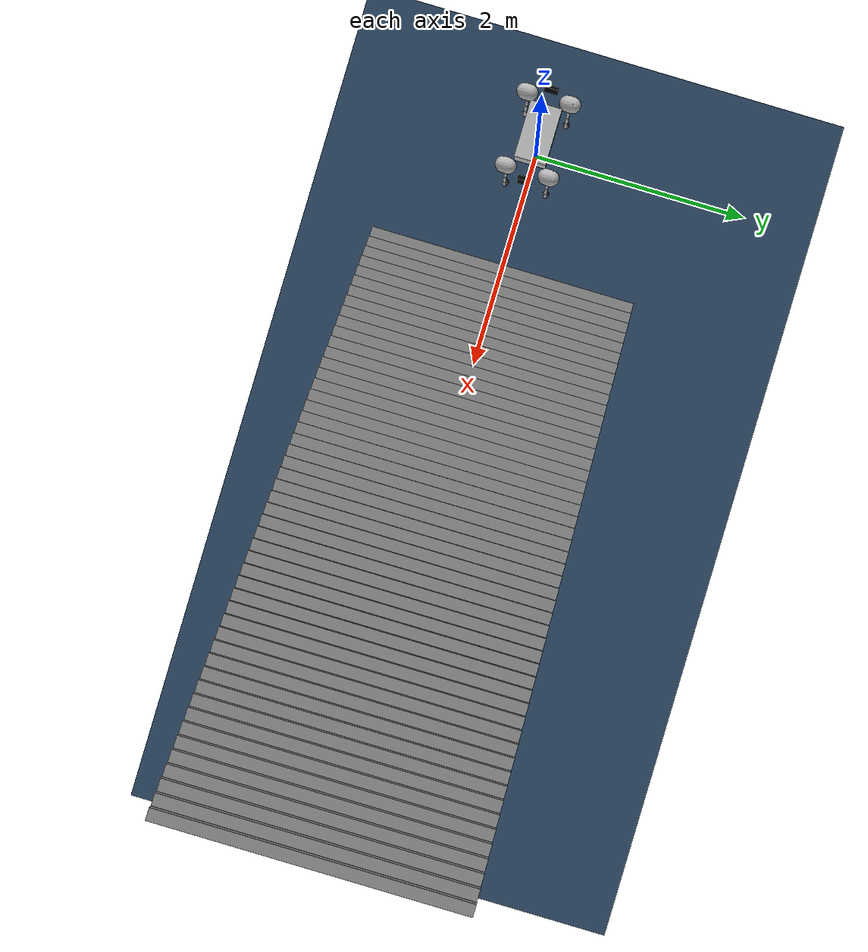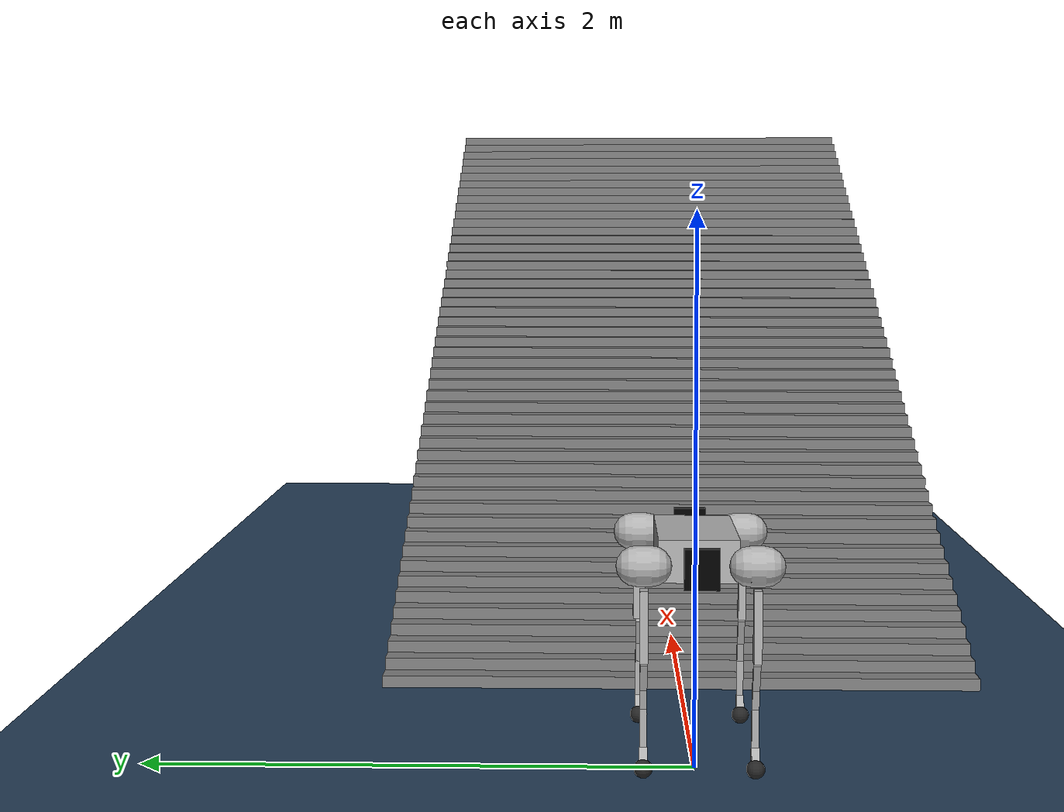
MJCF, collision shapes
<mujoco model="b2 scene">
  <include file="b2.xml" />

  <statistic center="0 0 0.1" extent="0.8" />

  <visual>
    <headlight diffuse="0.6 0.6 0.6" ambient="0.3 0.3 0.3" specular="0 0 0" />
    <rgba haze="0.15 0.25 0.35 1" />
    <global azimuth="-130" elevation="-20" />
  </visual>

  <asset>
    <texture type="skybox" builtin="gradient" rgb1="0.3 0.5 0.7" rgb2="0 0 0" width="512" height="3072" />
    <texture type="2d" name="groundplane" builtin="checker" mark="edge" rgb1="0.2 0.3 0.4" rgb2="0.1 0.2 0.3" markrgb="0.8 0.8 0.8" width="300" height="300" />
    <material name="groundplane" texture="groundplane" texuniform="true" texrepeat="5 5" reflectance="0.2" />
  </asset>

  <worldbody>
    <light pos="0 0 1.5" dir="0 0 -1" directional="true" />
    <geom name="floor" size="0 0 0.05" type="plane" material="groundplane" />
  <geom pos="1.1 0.0 0.025" type="box" size="0.05 1.25 0.025" quat="1.0 0.0 0.0 0.0" /><geom pos="1.2 0.0 0.07500000000000001" type="box" size="0.05 1.25 0.025" quat="1.0 0.0 0.0 0.0" /><geom pos="1.3 0.0 0.125" type="box" size="0.05 1.25 0.025" quat="1.0 0.0 0.0 0.0" /><geom pos="1.4 0.0 0.175" type="box" size="0.05 1.25 0.025" quat="1.0 0.0 0.0 0.0" /><geom pos="1.5 0.0 0.22499999999999998" type="box" size="0.05 1.25 0.025" quat="1.0 0.0 0.0 0.0" /><geom pos="1.6 0.0 0.27499999999999997" type="box" size="0.05 1.25 0.025" quat="1.0 0.0 0.0 0.0" /><geom pos="1.7 0.0 0.32499999999999996" type="box" size="0.05 1.25 0.025" quat="1.0 0.0 0.0 0.0" /><geom pos="1.7999999999999998 0.0 0.37499999999999994" type="box" size="0.05 1.25 0.025" quat="1.0 0.0 0.0 0.0" /><geom pos="1.9 0.0 0.42499999999999993" type="box" size="0.05 1.25 0.025" quat="1.0 0.0 0.0 0.0" /><geom pos="2.0 0.0 0.4749999999999999" type="box" size="0.05 1.25 0.025" quat="1.0 0.0 0.0 0.0" /><geom pos="2.0999999999999996 0.0 0.5249999999999999" type="box" size="0.05 1.25 0.025" quat="1.0 0.0 0.0 0.0" /><geom pos="2.2 0.0 0.575" type="box" size="0.05 1.25 0.025" quat="1.0 0.0 0.0 0.0" /><geom pos="2.3 0.0 0.625" type="box" size="0.05 1.25 0.025" quat="1.0 0.0 0.0 0.0" /><geom pos="2.4000000000000004 0.0 0.675" type="box" size="0.05 1.25 0.025" quat="1.0 0.0 0.0 0.0" /><geom pos="2.5 0.0 0.7250000000000001" type="box" size="0.05 1.25 0.025" quat="1.0 0.0 0.0 0.0" /><geom pos="2.6000000000000005 0.0 0.7750000000000001" type="box" size="0.05 1.25 0.025" quat="1.0 0.0 0.0 0.0" /><geom pos="2.7 0.0 0.8250000000000002" type="box" size="0.05 1.25 0.025" quat="1.0 0.0 0.0 0.0" /><geom pos="2.8000000000000007 0.0 0.8750000000000002" type="box" size="0.05 1.25 0.025" quat="1.0 0.0 0.0 0.0" /><geom pos="2.9000000000000004 0.0 0.9250000000000003" type="box" size="0.05 1.25 0.025" quat="1.0 0.0 0.0 0.0" /><geom pos="3.0000000000000004 0.0 0.9750000000000003" type="box" size="0.05 1.25 0.025" quat="1.0 0.0 0.0 0.0" /><geom pos="3.1000000000000005 0.0 1.0250000000000004" type="box" size="0.05 1.25 0.025" quat="1.0 0.0 0.0 0.0" /><geom pos="3.2000000000000006 0.0 1.0750000000000004" type="box" size="0.05 1.25 0.025" quat="1.0 0.0 0.0 0.0" /><geom pos="3.3000000000000007 0.0 1.1250000000000004" type="box" size="0.05 1.25 0.025" quat="1.0 0.0 0.0 0.0" /><geom pos="3.400000000000001 0.0 1.1750000000000005" type="box" size="0.05 1.25 0.025" quat="1.0 0.0 0.0 0.0" /><geom pos="3.500000000000001 0.0 1.2250000000000005" type="box" size="0.05 1.25 0.025" quat="1.0 0.0 0.0 0.0" /><geom pos="3.600000000000001 0.0 1.2750000000000006" type="box" size="0.05 1.25 0.025" quat="1.0 0.0 0.0 0.0" /><geom pos="3.700000000000001 0.0 1.3250000000000006" type="box" size="0.05 1.25 0.025" quat="1.0 0.0 0.0 0.0" /><geom pos="3.800000000000001 0.0 1.3750000000000007" type="box" size="0.05 1.25 0.025" quat="1.0 0.0 0.0 0.0" /><geom pos="3.9000000000000012 0.0 1.4250000000000007" type="box" size="0.05 1.25 0.025" quat="1.0 0.0 0.0 0.0" /><geom pos="4.000000000000002 0.0 1.4750000000000008" type="box" size="0.05 1.25 0.025" quat="1.0 0.0 0.0 0.0" /><geom pos="4.100000000000001 0.0 1.5250000000000008" type="box" size="0.05 1.25 0.025" quat="1.0 0.0 0.0 0.0" /><geom pos="4.200000000000001 0.0 1.5750000000000008" type="box" size="0.05 1.25 0.025" quat="1.0 0.0 0.0 0.0" /><geom pos="4.300000000000002 0.0 1.6250000000000009" type="box" size="0.05 1.25 0.025" quat="1.0 0.0 0.0 0.0" /><geom pos="4.400000000000002 0.0 1.675000000000001" type="box" size="0.05 1.25 0.025" quat="1.0 0.0 0.0 0.0" /><geom pos="4.500000000000002 0.0 1.725000000000001" type="box" size="0.05 1.25 0.025" quat="1.0 0.0 0.0 0.0" /><geom pos="4.600000000000001 0.0 1.775000000000001" type="box" size="0.05 1.25 0.025" quat="1.0 0.0 0.0 0.0" /><geom pos="4.700000000000002 0.0 1.825000000000001" type="box" size="0.05 1.25 0.025" quat="1.0 0.0 0.0 0.0" /><geom pos="4.8000000000000025 0.0 1.875000000000001" type="box" size="0.05 1.25 0.025" quat="1.0 0.0 0.0 0.0" /><geom pos="4.900000000000002 0.0 1.9250000000000012" type="box" size="0.05 1.25 0.025" quat="1.0 0.0 0.0 0.0" /><geom pos="5.000000000000002 0.0 1.9750000000000012" type="box" size="0.05 1.25 0.025" quat="1.0 0.0 0.0 0.0" /><geom pos="5.100000000000001 0.0 2.0250000000000012" type="box" size="0.05 1.25 0.025" quat="1.0 0.0 0.0 0.0" /><geom pos="5.200000000000001 0.0 2.075000000000001" type="box" size="0.05 1.25 0.025" quat="1.0 0.0 0.0 0.0" /><geom pos="5.300000000000001 0.0 2.125000000000001" type="box" size="0.05 1.25 0.025" quat="1.0 0.0 0.0 0.0" /><geom pos="5.4 0.0 2.1750000000000007" type="box" size="0.05 1.25 0.025" quat="1.0 0.0 0.0 0.0" /><geom pos="5.5 0.0 2.2250000000000005" type="box" size="0.05 1.25 0.025" quat="1.0 0.0 0.0 0.0" /><geom pos="5.6 0.0 2.2750000000000004" type="box" size="0.05 1.25 0.025" quat="1.0 0.0 0.0 0.0" /><geom pos="5.699999999999999 0.0 2.325" type="box" size="0.05 1.25 0.025" quat="1.0 0.0 0.0 0.0" /><geom pos="5.799999999999999 0.0 2.375" type="box" size="0.05 1.25 0.025" quat="1.0 0.0 0.0 0.0" /><geom pos="5.899999999999999 0.0 2.425" type="box" size="0.05 1.25 0.025" quat="1.0 0.0 0.0 0.0" /><geom pos="5.999999999999998 0.0 2.4749999999999996" type="box" size="0.05 1.25 0.025" quat="1.0 0.0 0.0 0.0" /></worldbody>
</mujoco>

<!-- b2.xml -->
<mujoco model="b2_description">
    <compiler angle="radian" autolimits="true"/>

    <default>
        <default class="b2">
            <geom type="mesh"/>
            <joint damping="1" armature="0.1"/>
            <default class="visual">
                <geom contype="0" conaffinity="0" group="2"/>
            </default>
            <default class="collision">
                <!-- Capsules instead of cylinders: MJX has no cylinder-box contacts. -->
                <geom group="3" mass="0" density="0"/>
            </default>
            <site size="0.001" rgba="0.5 0.5 0.5 0.3" group="4"/>
        </default>
    </default>

    <asset>
        <mesh name="base_link" file="assets/base_link.obj"/>

        <!-- modify these to add lidar, uncommenting the one before -->
        <!--mesh name="base_link_lidar" file="assets/base_link.obj"/-->
        <!--mesh name="unitree_ladar" file="assets/unitree_ladar.obj"/-->

        <mesh name="logo_left" file="assets/logo_left.obj"/>
        <mesh name="logo_right" file="assets/logo_right.obj"/>
        <mesh name="f_dc_link" file="assets/f_dc_link.obj"/>
        <mesh name="r_dc_link" file="assets/r_dc_link.obj"/>
        <mesh name="fake_imu_link" file="assets/fake_imu_link.STL"/>
        <mesh name="fake_head_Link" file="assets/fake_head_Link.STL"/>
        <mesh name="fake_tail_link" file="assets/fake_tail_link.STL"/>
        <mesh name="FL_hip" file="assets/FL_hip.obj"/>
        <mesh name="FL_thigh" file="assets/FL_thigh.obj"/>
        <mesh name="FL_thigh_protect" file="assets/FL_thigh_protect.obj"/>
        <mesh name="FL_calf" file="assets/FL_calf.obj"/>
        <mesh name="FL_foot" file="assets/FL_foot.obj"/>
        <mesh name="FR_hip" file="assets/FR_hip.obj"/>
        <mesh name="FR_thigh" file="assets/FR_thigh.obj"/>
        <mesh name="FR_thigh_protect" file="assets/FR_thigh_protect.obj"/>
        <mesh name="FR_calf" file="assets/FR_calf.obj"/>
        <mesh name="FR_foot" file="assets/FR_foot.obj"/>
        <mesh name="RL_hip" file="assets/RL_hip.obj"/>
        <mesh name="RL_thigh" file="assets/RL_thigh.obj"/>
        <mesh name="RL_thigh_protect" file="assets/RL_thigh_protect.obj"/>
        <mesh name="RL_calf" file="assets/RL_calf.obj"/>
        <mesh name="RL_foot" file="assets/RL_foot.obj"/>
        <mesh name="RR_hip" file="assets/RR_hip.obj"/>
        <mesh name="RR_thigh" file="assets/RR_thigh.obj"/>
        <mesh name="RR_thigh_protect" file="assets/RR_thigh_protect.obj"/>
        <mesh name="RR_calf" file="assets/RR_calf.obj"/>
        <mesh name="RR_foot" file="assets/RR_foot.obj"/>
        <mesh name="f_oc_link" file="assets/f_oc_link.obj"/>
        <mesh name="r_oc_link" file="assets/r_oc_link.obj"/>
    </asset>
    <worldbody>

        <body name="base" pos="0 0 0.8" childclass="b2">
            <inertial pos="0.0212868 0.0045819 0.0106169" quat="0.00178111 0.73 -0.000262894 0.737438"
                      mass="40.8426" diaginertia="1.73786 1.66448 0.343734"/>

            <!-- modify this to add lidar -->
            <!--inertial pos="0.0212868 0.0045819 0.0106169" quat="0.00178111 0.675412 -0.000262894 0.737438"
                      mass="40.8426" diaginertia="1.73786 1.66448 0.343734"/-->

            <joint name="floating_base_joint" type="free"/>
            <geom type="mesh" contype="0" conaffinity="0" group="1" density="0" rgba="0.7 0.7 0.7 1" mesh="base_link"/>
            <geom size="0.25 0.14 0.075" type="box" rgba="0.7 0.7 0.7 1" class="collision"/>
            <geom type="mesh" contype="0" conaffinity="0" group="1" density="0" rgba="1 1 1 1" mesh="logo_left"/>
            <geom type="mesh" contype="0" conaffinity="0" group="1" density="0" rgba="1 1 1 1" mesh="logo_right"/>

            <!-- modify these to add lidar -->
            <!--geom pos="0.34218 0 0.17851" type="mesh" contype="0" conaffinity="0" group="1" density="0"
                  rgba="0.15 0.15 0.15 1" mesh="unitree_ladar"/-->
            <!--geom size="0.076 0.08" pos="0.34218 0 0.15851" type="capsule" rgba="0.15 0.15 0.15 1" class="collision"/-->

            <geom pos="0.841724 -4.57659e-06 0.130379" quat="0.00244632 3.13845e-06 0.999997 1.29099e-06" type="mesh"
                  contype="0" conaffinity="0" group="1" density="0" rgba="0 0 0 1" mesh="f_dc_link"/>
            <geom pos="-0.378319 0.000200109 -0.379902" quat="-1.30076e-06 -0.708662 5.35065e-07 0.705548" type="mesh"
                  contype="0" conaffinity="0" group="1" density="0" rgba="0 0 0 1" mesh="r_dc_link"/>
            <geom pos="0 -0.02341 0.04927" type="mesh" contype="0" conaffinity="0" group="1" density="0" rgba="0 0 0 1"
                  mesh="fake_imu_link"/>
            <geom type="mesh" contype="0" conaffinity="0" group="1" density="0" rgba="0 0 0 1" mesh="fake_head_Link"/>
            <geom size="0.02 0.06 0.07" pos="0.41 0 0.005" type="box" rgba="0 0 0 1" class="collision"/>
            <geom type="mesh" contype="0" conaffinity="0" group="1" density="0" rgba="0 0 0 1" mesh="fake_tail_link"/>
            <geom size="0.0125 0.06 0.07" pos="-0.405 0 0.005" type="box" rgba="0 0 0 1" class="collision"/>
            <geom pos="0.84158 -0.0134347 -0.0134347" quat="-3.89602e-06 1.29867e-06 0.707107 -0.707107" type="mesh"
                  contype="0" conaffinity="0" group="1" density="0" rgba="0 0 0 1" mesh="f_oc_link"/>
            <geom pos="-0.00451008 0.0252504 -0.0262476" quat="0.707107 -0.707107 -1.29867e-06 -1.29867e-06" type="mesh"
                  contype="0" conaffinity="0" group="1" density="0" rgba="0 0 0 1" mesh="r_oc_link"/>
            <site name="imu" pos="0 -0.02341 0.04927"/>
            <body name="FL_hip" pos="0.3285 0.072 0">
                <inertial pos="-0.00829923 -0.00998502 0.000235465" quat="0.525168 0.518964 0.477213 0.476595"
                          mass="2.5294" diaginertia="0.00485541 0.00370618 0.00277182"/>
                <joint name="FL_hip_joint" pos="0 0 0" axis="1 0 0" range="-0.87 0.87"/>
                <geom type="mesh" contype="0" conaffinity="0" group="1" density="0" rgba="0.7 0.7 0.7 1" mesh="FL_hip"/>
                <geom size="0.07 0.025" pos="0 0.12 0" quat="0.707107 0.707107 0 0" type="capsule" rgba="0.7 0.7 0.7 1"
                      class="collision"/>
                <body name="FL_thigh" pos="0 0.11973 0">
                    <inertial pos="-0.00418663 -0.0366068 -0.0432737" quat="0.884916 0.0880602 -0.00896728 0.457262"
                              mass="7.4554" diaginertia="0.085057 0.0842843 0.0112538"/>
                    <joint name="FL_thigh_joint" pos="0 0 0" axis="0 1 0" range="-0.94 4.69"/>
                    <geom type="mesh" contype="0" conaffinity="0" group="1" density="0" rgba="0.7 0.7 0.7 1"
                          mesh="FL_thigh"/>
                    <geom size="0.16 0.02225 0.027" pos="-0.025 0 -0.16" quat="0.707388 0 0.706825 0" type="box"
                          rgba="0.7 0.7 0.7 1" class="collision"/>
                    <geom type="mesh" contype="0" conaffinity="0" group="1" density="0" rgba="0.65 0.68 0.65 1"
                          mesh="FL_thigh_protect"/>
                    <body name="FL_calf" pos="0 -8.6984e-05 -0.35">
                        <inertial pos="0.0096848 1.25758e-05 -0.158987" quat="0.70753 -0.00625821 -0.00634277 0.706627"
                                  mass="0.679123" diaginertia="0.0162494 0.0161173 0.000398115"/>
                        <joint name="FL_calf_joint" pos="0 0 0" axis="0 1 0" range="-2.82 -0.43"/>
                        <geom type="mesh" contype="0" conaffinity="0" group="1" density="0" rgba="0.7 0.7 0.7 1"
                              mesh="FL_calf"/>
                        <geom size="0.05 0.01225 0.009" pos="-0.002 0 -0.03" quat="0.825336 0 0.564642 0" type="box"
                              rgba="0.7 0.7 0.7 1" class="collision"/>
                        <geom size="0.05 0.01225 0.009" pos="0.022 0 -0.1" quat="0.780707 0 0.624897 0" type="box"
                              rgba="0.7 0.7 0.7 1" class="collision"/>
                        <geom size="0.075 0.01225 0.0075" pos="0.036 0 -0.225" quat="0.721382 0 0.692537 0" type="box"
                              rgba="0.7 0.7 0.7 1" class="collision"/>
                        <geom size="0.025 0.014 0.0175" pos="0.023 0 -0.31" quat="0.540302 0 0.841471 0" type="box"
                              rgba="0.7 0.7 0.7 1" class="collision"/>
                        <geom pos="0 8.6986e-05 0" type="mesh" contype="0" conaffinity="0" group="1" density="0"
                              rgba="0.15 0.15 0.15 1" mesh="FL_foot" friction="0.4 0.005 0.0001"/>
                        <geom name="FL" size="0.032" pos="0 8.6986e-05 -0.35" quat="0.707388 0.706825 0 0" type="sphere"
                              rgba="0.15 0.15 0.15 1" class="collision" friction="0.4 0.005 0.0001"/>
                    </body>
                </body>
            </body>
            <body name="FR_hip" pos="0.3285 -0.072 0">
                <inertial pos="-0.00829923 0.00998502 0.000235465" quat="0.476595 0.477213 0.518964 0.525168"
                          mass="2.5294" diaginertia="0.00485541 0.00370618 0.00277182"/>
                <joint name="FR_hip_joint" pos="0 0 0" axis="1 0 0" range="-0.87 0.87"/>
                <geom type="mesh" contype="0" conaffinity="0" group="1" density="0" rgba="0.7 0.7 0.7 1" mesh="FR_hip"/>
                <geom size="0.07 0.025" pos="0 -0.12 0" quat="0.707107 0.707107 0 0" type="capsule"
                      rgba="0.7 0.7 0.7 1" class="collision"/>
                <body name="FR_thigh" pos="0 -0.11973 0">
                    <inertial pos="-0.00418663 0.0366068 -0.0432737" quat="0.457262 -0.00896728 0.0880602 0.884916"
                              mass="7.4554" diaginertia="0.085057 0.0842843 0.0112538"/>
                    <joint name="FR_thigh_joint" pos="0 0 0" axis="0 1 0" range="-0.94 4.69"/>
                    <geom type="mesh" contype="0" conaffinity="0" group="1" density="0" rgba="0.7 0.7 0.7 1"
                          mesh="FR_thigh"/>
                    <geom size="0.125 0.014 0.02" pos="-0.03 0 -0.2" quat="0.707388 0 0.706825 0" type="box"
                          rgba="0.7 0.7 0.7 1" class="collision"/>
                    <geom type="mesh" contype="0" conaffinity="0" group="1" density="0" rgba="0.65 0.68 0.65 1"
                          mesh="FR_thigh_protect"/>
                    <body name="FR_calf" pos="0 8.6986e-05 -0.35">
                        <inertial pos="0.0096848 0 -0.158987" quat="0.707079 -0.00630052 -0.00630052 0.707079"
                                  mass="0.679123" diaginertia="0.0162494 0.0161173 0.000398115"/>
                        <joint name="FR_calf_joint" pos="0 0 0" axis="0 1 0" range="-2.82 -0.43"/>
                        <geom type="mesh" contype="0" conaffinity="0" group="1" density="0" rgba="0.7 0.7 0.7 1"
                              mesh="FR_calf"/>
                        <geom size="0.05 0.01225 0.009" pos="-0.002 0 -0.03" quat="0.825336 0 0.564642 0" type="box"
                              rgba="0.7 0.7 0.7 1" class="collision"/>
                        <geom size="0.05 0.01225 0.009" pos="0.022 0 -0.1" quat="0.780707 0 0.624897 0" type="box"
                              rgba="0.7 0.7 0.7 1" class="collision"/>
                        <geom size="0.075 0.01225 0.0075" pos="0.036 0 -0.225" quat="0.721382 0 0.692537 0" type="box"
                              rgba="0.7 0.7 0.7 1" class="collision"/>
                        <geom size="0.025 0.014 0.0175" pos="0.023 0 -0.31" quat="0.540302 0 0.841471 0" type="box"
                              rgba="0.7 0.7 0.7 1" class="collision"/>
                        <geom type="mesh" contype="0" conaffinity="0" group="1" density="0" rgba="0.15 0.15 0.15 1"
                              mesh="FR_foot" friction="0.4 0.005 0.0001"/>
                        <geom name="FR" size="0.032" pos="0 8.6986e-05 -0.35" quat="0.707388 0.706825 0 0" type="sphere"
                              rgba="0.15 0.15 0.15 1" class="collision" friction="0.4 0.005 0.0001"/>
                    </body>
                </body>
            </body>
            <body name="RL_hip" pos="-0.3285 0.072 0">
                <inertial pos="0.00829923 -0.00998502 0.000235465" quat="0.477213 0.476595 0.525168 0.518964"
                          mass="2.5294" diaginertia="0.00485541 0.00370618 0.00277182"/>
                <joint name="RL_hip_joint" pos="0 0 0" axis="1 0 0" range="-0.87 0.87"/>
                <geom type="mesh" contype="0" conaffinity="0" group="1" density="0" rgba="0.7 0.7 0.7 1" mesh="RL_hip"/>
                <geom size="0.07 0.025" pos="0 0.12 0" quat="0.707107 0.707107 0 0" type="capsule" rgba="0.7 0.7 0.7 1"
                      class="collision"/>
                <body name="RL_thigh" pos="0 0.11973 0">
                    <inertial pos="-0.00418663 -0.0366068 -0.0432737" quat="0.884916 0.0880602 -0.00896728 0.457262"
                              mass="7.4554" diaginertia="0.085057 0.0842843 0.0112538"/>
                    <joint name="RL_thigh_joint" pos="0 0 0" axis="0 1 0" range="-0.94 4.69"/>
                    <geom type="mesh" contype="0" conaffinity="0" group="1" density="0" rgba="0.7 0.7 0.7 1"
                          mesh="RL_thigh"/>
                    <geom size="0.125 0.014 0.02" pos="-0.03 0 -0.2" quat="0.707388 0 0.706825 0" type="box"
                          rgba="0.7 0.7 0.7 1" class="collision"/>
                    <geom type="mesh" contype="0" conaffinity="0" group="1" density="0" rgba="0.65 0.68 0.65 1"
                          mesh="RL_thigh_protect"/>
                    <body name="RL_calf" pos="0 -8.6984e-05 -0.35">
                        <inertial pos="0.0096848 1.25758e-05 -0.158987" quat="0.70753 -0.00625821 -0.00634277 0.706627"
                                  mass="0.679123" diaginertia="0.0162494 0.0161173 0.000398115"/>
                        <joint name="RL_calf_joint" pos="0 0 0" axis="0 1 0" range="-2.82 -0.43"/>
                        <geom type="mesh" contype="0" conaffinity="0" group="1" density="0" rgba="0.7 0.7 0.7 1"
                              mesh="RL_calf"/>
                        <geom size="0.05 0.01225 0.009" pos="-0.002 0 -0.03" quat="0.825336 0 0.564642 0" type="box"
                              rgba="0.7 0.7 0.7 1" class="collision"/>
                        <geom size="0.05 0.01225 0.009" pos="0.022 0 -0.1" quat="0.780707 0 0.624897 0" type="box"
                              rgba="0.7 0.7 0.7 1" class="collision"/>
                        <geom size="0.075 0.01225 0.0075" pos="0.036 0 -0.225" quat="0.721382 0 0.692537 0" type="box"
                              rgba="0.7 0.7 0.7 1" class="collision"/>
                        <geom size="0.025 0.014 0.0175" pos="0.023 0 -0.31" quat="0.540302 0 0.841471 0" type="box"
                              rgba="0.7 0.7 0.7 1" class="collision"/>
                        <geom pos="0 8.6986e-05 0" type="mesh" contype="0" conaffinity="0" group="1" density="0"
                              rgba="0.15 0.15 0.15 1" mesh="RL_foot" friction="0.4 0.005 0.0001"/>
                        <geom name="RL" size="0.032" pos="0 8.6986e-05 -0.35" quat="0.707388 0.706825 0 0" type="sphere"
                              rgba="0.15 0.15 0.15 1" class="collision" friction="0.4 0.005 0.0001"/>
                    </body>
                </body>
            </body>
            <body name="RR_hip" pos="-0.3285 -0.072 0">
                <inertial pos="0.00829923 -0.00825992 0.000235465" quat="0.524846 0.53164 0.469132 0.470967"
                          mass="2.5294" diaginertia="0.0048658 0.00378576 0.00284106"/>
                <joint name="RR_hip_joint" pos="0 0 0" axis="1 0 0" range="-0.87 0.87"/>
                <geom type="mesh" contype="0" conaffinity="0" group="1" density="0" rgba="0.7 0.7 0.7 1" mesh="RR_hip"/>
                <geom size="0.07 0.025" pos="0 -0.12 0" quat="0.707107 0.707107 0 0" type="capsule"
                      rgba="0.7 0.7 0.7 1" class="collision"/>
                <body name="RR_thigh" pos="0 -0.11973 0">
                    <inertial pos="-0.00418663 0.0366068 -0.0432737" quat="0.457262 -0.00896728 0.0880602 0.884916"
                              mass="7.4554" diaginertia="0.085057 0.0842843 0.0112538"/>
                    <joint name="RR_thigh_joint" pos="0 0 0" axis="0 1 0" range="-0.94 4.69"/>
                    <geom type="mesh" contype="0" conaffinity="0" group="1" density="0" rgba="0.7 0.7 0.7 1"
                          mesh="RR_thigh"/>
                    <geom size="0.125 0.014 0.02" pos="-0.03 0 -0.2" quat="0.707388 0 0.706825 0" type="box"
                          rgba="0.7 0.7 0.7 1" class="collision"/>
                    <geom type="mesh" contype="0" conaffinity="0" group="1" density="0" rgba="0.65 0.68 0.65 1"
                          mesh="RR_thigh_protect"/>
                    <body name="RR_calf" pos="0 8.6986e-05 -0.35">
                        <inertial pos="0.0096848 -1.25756e-05 -0.158987" quat="0.706627 -0.00634277 -0.00625821 0.70753"
                                  mass="0.679123" diaginertia="0.0162494 0.0161173 0.000398115"/>
                        <joint name="RR_calf_joint" pos="0 0 0" axis="0 1 0" range="-2.82 -0.43"/>
                        <geom type="mesh" contype="0" conaffinity="0" group="1" density="0" rgba="0.7 0.7 0.7 1"
                              mesh="RR_calf"/>
                        <geom size="0.05 0.01225 0.009" pos="-0.002 0 -0.03" quat="0.825336 0 0.564642 0" type="box"
                              rgba="0.7 0.7 0.7 1" class="collision"/>
                        <geom size="0.05 0.01225 0.009" pos="0.022 0 -0.1" quat="0.780707 0 0.624897 0" type="box"
                              rgba="0.7 0.7 0.7 1" class="collision"/>
                        <geom size="0.075 0.01225 0.0075" pos="0.036 0 -0.225" quat="0.721382 0 0.692537 0" type="box"
                              rgba="0.7 0.7 0.7 1" class="collision"/>
                        <geom size="0.025 0.014 0.0175" pos="0.023 0 -0.31" quat="0.540302 0 0.841471 0" type="box"
                              rgba="0.7 0.7 0.7 1" class="collision"/>
                        <geom pos="0 -8.6984e-05 0" type="mesh" contype="0" conaffinity="0" group="1" density="0"
                              rgba="0.15 0.15 0.15 1" mesh="RR_foot" friction="0.4 0.005 0.0001"/>
                        <geom name="RR" size="0.032" pos="0 8.6986e-05 -0.35" quat="0.707388 0.706825 0 0" type="sphere"
                              rgba="0.15 0.15 0.15 1" class="collision" friction="0.4 0.005 0.0001"/>
                    </body>
                </body>
            </body>
        </body>
    </worldbody>

    <actuator>
        <motor class="b2" ctrlrange="-200 200" name="FL_hip" joint="FL_hip_joint"/>
        <motor class="b2" ctrlrange="-200 200" name="FL_thigh" joint="FL_thigh_joint"/>
        <motor class="b2" ctrlrange="-300 300" name="FL_calf" joint="FL_calf_joint"/>
        <motor class="b2" ctrlrange="-200 200" name="FR_hip" joint="FR_hip_joint"/>
        <motor class="b2" ctrlrange="-200 200" name="FR_thigh" joint="FR_thigh_joint"/>
        <motor class="b2" ctrlrange="-300 300" name="FR_calf" joint="FR_calf_joint"/>
        <motor class="b2" ctrlrange="-200 200" name="RL_hip" joint="RL_hip_joint"/>
        <motor class="b2" ctrlrange="-200 200" name="RL_thigh" joint="RL_thigh_joint"/>
        <motor class="b2" ctrlrange="-300 300" name="RL_calf" joint="RL_calf_joint"/>
        <motor class="b2" ctrlrange="-200 200" name="RR_hip" joint="RR_hip_joint"/>
        <motor class="b2" ctrlrange="-200 200" name="RR_thigh" joint="RR_thigh_joint"/>
        <motor class="b2" ctrlrange="-300 300" name="RR_calf" joint="RR_calf_joint"/>
    </actuator>

    <sensor>
        <accelerometer name="imu_acc" site="imu"/>
        <gyro name="imu_gyro" site="imu"/>
        <framepos name="imu_pos" objtype="site" objname="imu"/>
        <framequat name="imu_quat" objtype="site" objname="imu"/>
    </sensor>

    <keyframe>
        <key name="home" qpos="0 0 0.485 1 0 0 0 0 0.9 -1.8 0 0.9 -1.8 0 0.9 -1.8 0 0.9 -1.8"/>
        <key name="down" qpos="0 0 0.05 1 0 0 0 0.0 1.21 -2.794 0.0 1.21 -2.794 0.0 1.21 -2.794 0.0 1.21 -2.794"/>
    </keyframe>

</mujoco>
